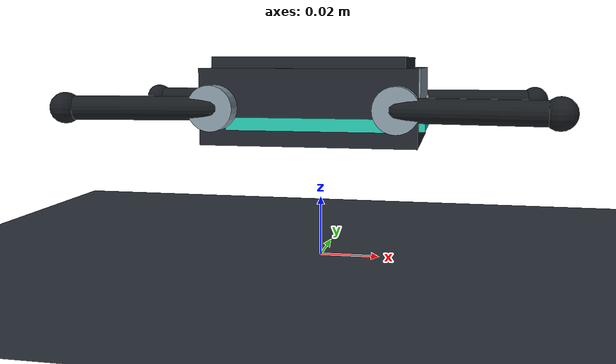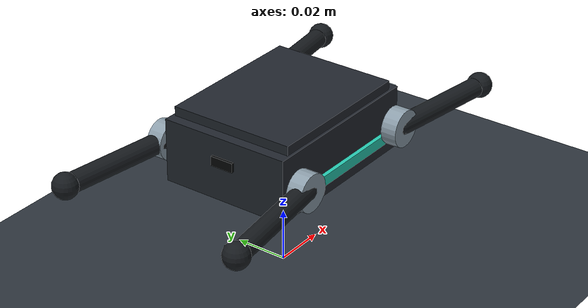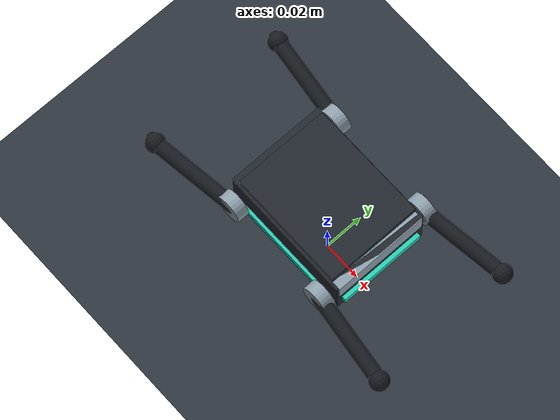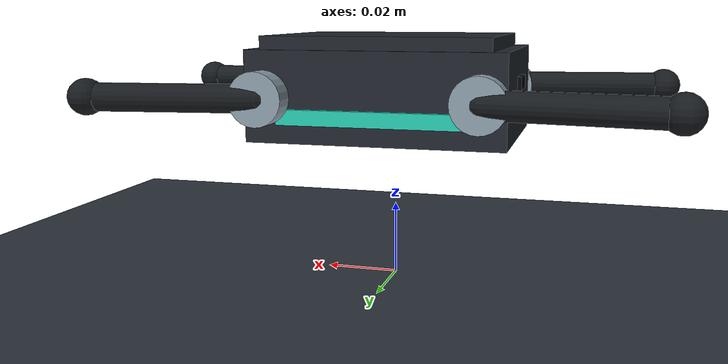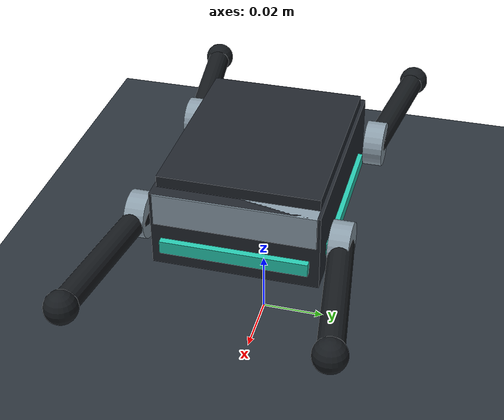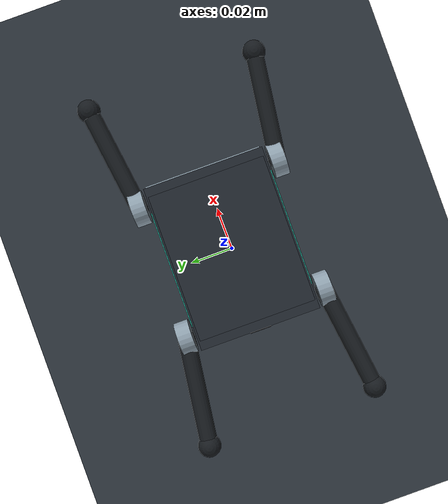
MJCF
<mujoco model="KT2 approximate four-servo robot">
  <compiler angle="degree" autolimits="true"/>
  <option timestep="0.002" integrator="implicitfast" cone="elliptic" iterations="60"/>
  <visual>
    <global offwidth="1280" offheight="720"/>
    <quality shadowsize="2048"/>
    <headlight diffuse="0.6 0.6 0.6" ambient="0.3 0.3 0.3"/>
    <map znear="0.005"/>
  </visual>
  <statistic center="0 0 0.04" extent="0.35"/>
  <default>
    <joint damping="0.0018" armature="0.000006" frictionloss="0.0005"/>
    <geom friction="0.85 0.005 0.0001" condim="4" solref="0.006 1" solimp="0.95 0.99 0.001"/>
    <default class="visual">
      <geom contype="0" conaffinity="0" mass="0"/>
    </default>
    <default class="leg">
      <joint type="hinge" axis="0 -1 0" range="-150 150"/>
      <geom type="capsule" size="0.0037" rgba="0.09 0.105 0.12 1"/>
    </default>
  </default>
  <asset>
    <texture name="ground" type="2d" builtin="checker" width="512" height="512" rgb1="0.16 0.19 0.22" rgb2="0.19 0.22 0.25"/>
    <material name="floor" texture="ground" texrepeat="20 20" reflectance="0.08"/>
    <material name="shell" rgba="0.13 0.15 0.18 1" specular="0.65" shininess="0.6"/>
    <material name="trim" rgba="0.55 0.62 0.67 1" specular="0.8" shininess="0.6"/>
    <material name="rubber" rgba="0.055 0.065 0.075 1"/>
  </asset>
  <worldbody>
    <light pos="0.3 -0.3 0.6" dir="-0.4 0.4 -1" diffuse="0.8 0.85 0.9"/>
    <light pos="-0.3 0.3 0.4" dir="0.3 -0.3 -1" diffuse="0.4 0.55 0.65" castshadow="false"/>
    <geom name="floor" type="plane" size="3 3 0.05" material="floor"/>
    <body name="shell" pos="0 0 0.052">
      <freejoint name="root"/>
      <inertial pos="-0.004 0 0.004" mass="0.12" diaginertia="0.000038 0.000062 0.000086"/>
      <geom name="chassis" type="box" size="0.034 0.025 0.012" material="shell"/>
      <geom name="top" class="visual" type="box" pos="0 0 0.013" size="0.030 0.024 0.0025" material="shell"/>
      <geom name="nose" class="visual" type="box" pos="0.032 0 0.007" size="0.0025 0.024 0.005" material="trim"/>
      <geom name="usb" class="visual" type="box" pos="-0.0345 0 0.003" size="0.0006 0.0045 0.0018" rgba="0.015 0.02 0.025 1"/>
      <geom name="led_left" class="visual" type="box" pos="0 0.0255 -0.005" size="0.025 0.001 0.002" rgba="0.15 0.8 0.7 1"/>
      <geom name="led_right" class="visual" type="box" pos="0 -0.0255 -0.005" size="0.025 0.001 0.002" rgba="0.15 0.8 0.7 1"/>
      <geom name="led_front" class="visual" type="box" pos="0.035 0 -0.005" size="0.001 0.022 0.002" rgba="0.15 0.8 0.7 1"/>
      <site name="imu" size="0.001" rgba="0 0 0 0"/>
      <camera name="follow" mode="trackcom" pos="0.22 -0.28 0.17" xyaxes="0.786 0.618 0 -0.236 0.300 0.924"/>
      <body name="front_left" pos="0.028 0.03 0" childclass="leg">
        <joint name="front_left"/>
        <inertial pos="0.021 0.003 0" mass="0.01" diaginertia="0.00000015 0.0000018 0.0000018"/>
        <geom name="front_left_link" fromto="0 0 0 0.045 0.006 0"/>
        <geom class="visual" type="cylinder" size="0.007 0.003" quat="0.7071 0.7071 0 0" material="trim"/>
        <geom name="front_left_foot" type="sphere" size="0.0048" pos="0.045 0.006 0" material="rubber"/>
      </body>
      <body name="front_right" pos="0.028 -0.03 0" childclass="leg">
        <joint name="front_right"/>
        <inertial pos="0.021 -0.003 0" mass="0.01" diaginertia="0.00000015 0.0000018 0.0000018"/>
        <geom name="front_right_link" fromto="0 0 0 0.045 -0.006 0"/>
        <geom class="visual" type="cylinder" size="0.007 0.003" quat="0.7071 0.7071 0 0" material="trim"/>
        <geom name="front_right_foot" type="sphere" size="0.0048" pos="0.045 -0.006 0" material="rubber"/>
      </body>
      <body name="rear_left" pos="-0.028 0.03 0" childclass="leg">
        <joint name="rear_left"/>
        <inertial pos="-0.021 0.003 0" mass="0.01" diaginertia="0.00000015 0.0000018 0.0000018"/>
        <geom name="rear_left_link" fromto="0 0 0 -0.045 0.006 0"/>
        <geom class="visual" type="cylinder" size="0.007 0.003" quat="0.7071 0.7071 0 0" material="trim"/>
        <geom name="rear_left_foot" type="sphere" size="0.0048" pos="-0.045 0.006 0" material="rubber"/>
      </body>
      <body name="rear_right" pos="-0.028 -0.03 0" childclass="leg">
        <joint name="rear_right"/>
        <inertial pos="-0.021 -0.003 0" mass="0.01" diaginertia="0.00000015 0.0000018 0.0000018"/>
        <geom name="rear_right_link" fromto="0 0 0 -0.045 -0.006 0"/>
        <geom class="visual" type="cylinder" size="0.007 0.003" quat="0.7071 0.7071 0 0" material="trim"/>
        <geom name="rear_right_foot" type="sphere" size="0.0048" pos="-0.045 -0.006 0" material="rubber"/>
      </body>
    </body>
  </worldbody>
  <actuator>
    <position name="front_left" joint="front_left" kp="0.35" kv="0.012" ctrlrange="-2.617994 2.617994" forcerange="-0.12 0.12"/>
    <position name="front_right" joint="front_right" kp="0.35" kv="0.012" ctrlrange="-2.617994 2.617994" forcerange="-0.12 0.12"/>
    <position name="rear_left" joint="rear_left" kp="0.35" kv="0.012" ctrlrange="-2.617994 2.617994" forcerange="-0.12 0.12"/>
    <position name="rear_right" joint="rear_right" kp="0.35" kv="0.012" ctrlrange="-2.617994 2.617994" forcerange="-0.12 0.12"/>
  </actuator>
  <sensor>
    <accelerometer name="accelerometer" site="imu"/>
    <gyro name="gyro" site="imu"/>
    <framequat name="orientation" objtype="site" objname="imu"/>
  </sensor>
</mujoco>
